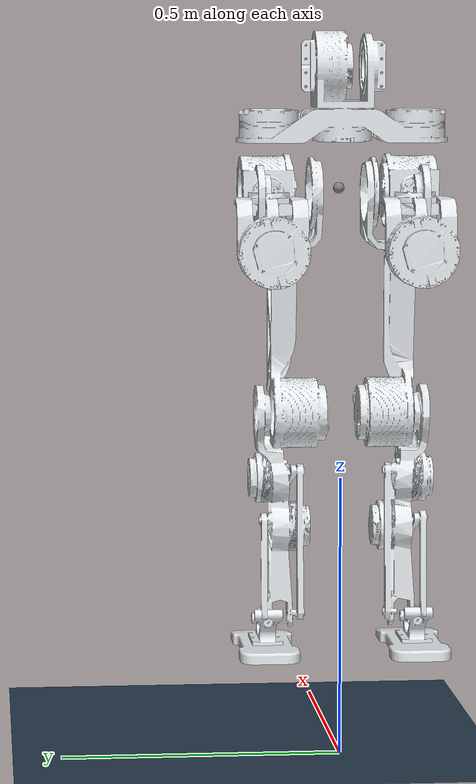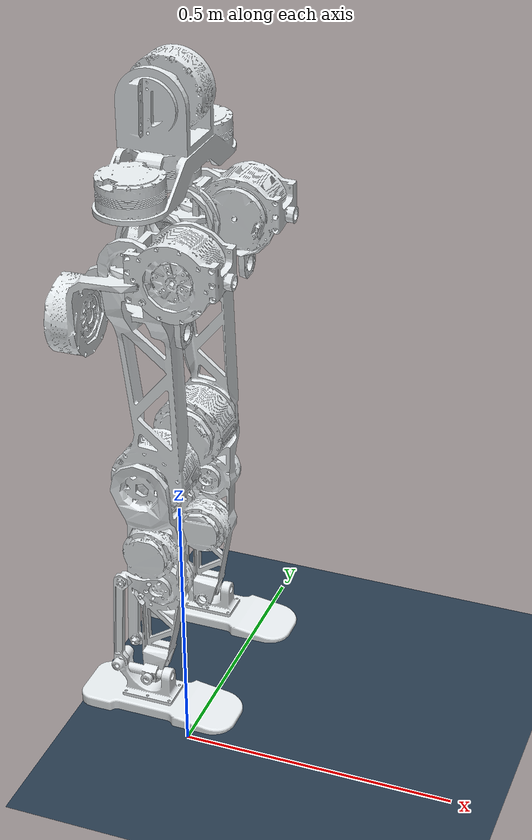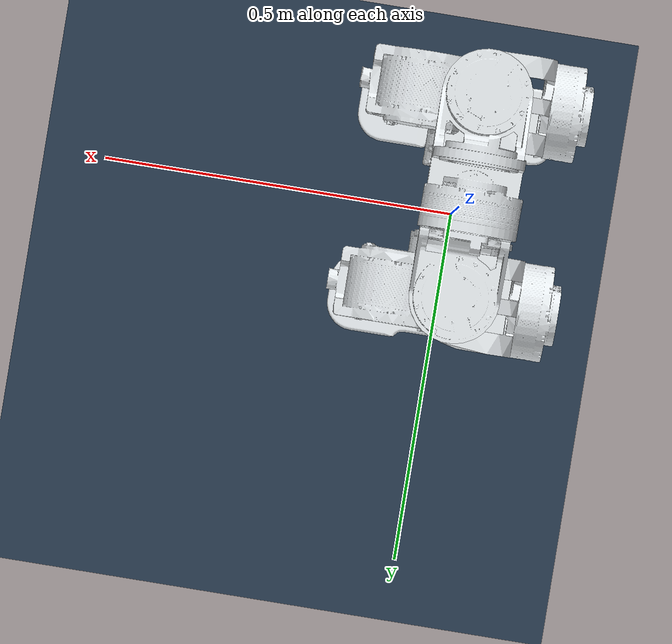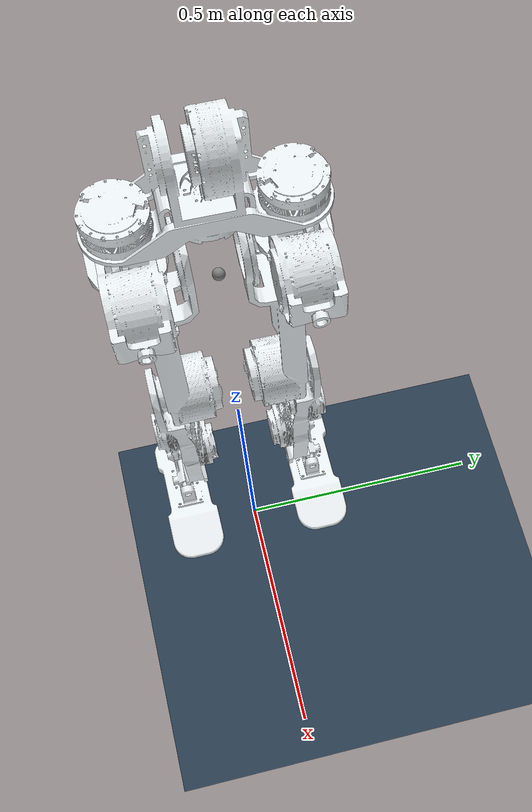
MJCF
<mujoco model="robot_zky">

  <compiler angle="radian" meshdir="../meshes/" autolimits="true"/>

  <option timestep="0.001"  tolerance="1e-10" solver="Newton" jacobian="dense" cone="pyramidal" gravity="0 0 -9.81">  <!--integrator="RK4"  iteration="50"-->
        <flag contact="enable" energy="enable"/>
  </option>

  <size njmax="500" nconmax="1000" />
  <statistic meansize="0.124491" extent="1.47932" center="0.0977106 1.30029e-06 0.632631"/>
  <default>
      <light castshadow="false" />
      <geom condim="4" contype="1" friction="0.9 0.2 0.2" solref="0.002 1" solimp="0.95 0.99 0.001" conaffinity="15"/>
      <default class='leg_joint_param'>
        <joint limited='true' damping="0.01" frictionloss="0.01" armature="0.01"/>
      </default>
      <default class="visual">
          <geom contype="0" conaffinity="0" group="1" type="mesh" euler="1.57 0 0" />
      </default>
      <default class="collision">
          <geom contype="1" conaffinity="1" friction="1.0 0.3 0.3"
                margin="0.001" group="0" euler="0 0 0"
                solref="0.05 2"
                solimp="0.9 0.95 0.001"/>

      </default>
      <joint damping="0.1" frictionloss="0.02" armature="0.01"/>
  </default>

  <asset>
    <mesh name="pelvis" file="pelvis.STL"/>
    <mesh name="left_hip_yaw_link" file="left_hip_yaw_link.STL"/>
    <mesh name="left_hip_roll_link" file="left_hip_roll_link.STL"/>
    <mesh name="left_hip_pitch_link" file="left_hip_pitch_link.STL"/>
    <mesh name="left_knee_link" file="left_knee_link.STL"/>
    <mesh name="left_ankle_pitch_link" file="left_ankle_pitch_link.STL"/>
    <mesh name="left_ankle_roll_link" file="left_ankle_roll_link.STL"/>
    <mesh name="right_hip_yaw_link" file="right_hip_yaw_link.STL"/>
    <mesh name="right_hip_roll_link" file="right_hip_roll_link.STL"/>
    <mesh name="right_hip_pitch_link" file="right_hip_pitch_link.STL"/>
    <mesh name="right_knee_link" file="right_knee_link.STL"/>
    <mesh name="right_ankle_pitch_link" file="right_ankle_pitch_link.STL"/>
    <mesh name="right_ankle_roll_link" file="right_ankle_roll_link.STL"/>
    <texture name="texplane" type="2d" builtin="checker" rgb1=".2 .3 .4" rgb2=".1 0.15 0.2" width="512" height="512" mark="cross" markrgb=".8 .8 .8" />
    <material name="matplane" reflectance="0.3" texture="texplane" texrepeat="1 1" texuniform="true" />
  </asset>

  <worldbody>
    <light directional="true" diffuse=".4 .4 .4" specular="0.1 0.1 0.1" pos="0 0 5.0" dir="0 0 -1" castshadow="false"/>
    <light directional="true" diffuse=".6 .6 .6" specular="0.2 0.2 0.2" pos="0 0 4" dir="0 0 -1"/>

    <geom name="ground" type="plane" size="0 0 1" pos="0 0 0" quat="1 0 0 0" material="matplane" condim="3" conaffinity='15' density="0"/>

    <body name="pelvis" pos="0 0 1.1">
      <inertial pos="5.2e-05 -0.001061 0.030044" quat="0.499428 0.499422 -0.500576 0.500573" mass="2.393" diaginertia="0.0385013 0.0367114 0.00365298"/>
      <joint name="floating_world_joint" type="free" limited="false" />

      <geom type="mesh" contype="0" conaffinity="0" group="1" density="0" rgba="0.89804 0.91765 0.92941 1" mesh="pelvis"/>
      <site name="imu_in_pelvis" size="0.01" pos="0.04525 0 -0.08339"/>

      <body name="left_hip_yaw_link" pos="-0.0015 0.13 -0.09">
        <inertial pos="-0.079616 -5e-06 0.017119" quat="0.00158885 0.414541 0.00062619 0.910029" mass="1.976" diaginertia="0.00856544 0.00820499 0.00398887"/>
        <joint name="left_hip_yaw_joint" pos="0 0 0" axis="0 0 1" range="-1.79 1.79" />
        <geom type="mesh" contype="0" conaffinity="0" group="1" density="0" rgba="0.89804 0.91765 0.92941 1" mesh="left_hip_yaw_link"/>
        <body name="left_hip_roll_link">
          <inertial pos="-0.002408 0.003222 0.000414" quat="0.483561 0.487194 0.508015 0.520319" mass="2.797" diaginertia="0.00811163 0.00695777 0.00542999"/>
          <joint name="left_hip_roll_joint" pos="0 0 0" axis="1 0 0" range="-3.1416 3.1416" />
          <geom type="mesh" contype="0" conaffinity="0" group="1" density="0" rgba="0.89804 0.91765 0.92941 1" mesh="left_hip_roll_link"/>
          <body name="left_hip_pitch_link">
            <inertial pos="0.003023 -0.000226 -0.290178" quat="0.679286 -0.0215234 0.033163 0.732808" mass="3.599" diaginertia="0.0868877 0.0855466 0.00731032"/>
            <joint name="left_hip_pitch_joint" pos="0 0 0" axis="0 1 0" range="-1.39 0.3" />
            <geom type="mesh" contype="0" conaffinity="0" group="1" density="0" rgba="0.898039 0.917647 0.929412 1" mesh="left_hip_pitch_link"/>
            <body name="left_knee_link" pos="0 0 -0.39">
              <inertial pos="0.00347 0.008614 -0.153999" quat="0.751015 -0.0415138 0.0736975 0.654845" mass="2.223" diaginertia="0.020134 0.0195199 0.00282332"/>
              <joint name="left_knee_joint" pos="0 0 0" axis="0 1 0" range="-0.74 2.05" />
              <geom type="mesh" contype="0" conaffinity="0" group="1" density="0" rgba="0.898039 0.917647 0.929412 1" mesh="left_knee_link"/>
              <body name="left_ankle_pitch_link" pos="0 0.004 -0.37">
                <inertial pos="2.2e-10 -3.683e-09 -5.8708e-08" quat="0.707107 0.707107 4.57061e-05 -4.26374e-05" mass="0.056" diaginertia="1.02716e-05 1.02716e-05 1.02716e-05"/>
                <joint name="left_ankle_pitch_joint" pos="0 0 0" axis="0 -1 0" range="-0.40 0.57" />
                <geom type="mesh" contype="0" conaffinity="0" group="1" density="0" rgba="0.898039 0.917647 0.929412 1" mesh="left_ankle_pitch_link"/>
                <body name="left_ankle_roll_link">
                  <inertial pos="0.00352385 6.1617e-08 -0.0365794" quat="0 0.733878 0 0.679281" mass="0.655" diaginertia="0.0034594 0.00327211 0.00070548"/>
                  <joint name="left_ankle_roll_joint" pos="0 0 0" axis="1 0 0" range="-0.17 0.17" />
                  <geom type="mesh" contype="0" conaffinity="0" group="1" density="0" rgba="0.898039 0.917647 0.929412 1" mesh="left_ankle_roll_link"/>
                  <geom name="left_foot_collision" type="mesh" mesh="left_ankle_roll_link"
                        rgba="0.3 0.8 0.3 0.5" euler="0 0 0" conaffinity="15"/>

                </body>
              </body>
            </body>
          </body>
        </body>
      </body>

      <body name="right_hip_yaw_link" pos="-0.0015 -0.13 -0.09">
        <inertial pos="-0.079616 5e-06 0.017119" quat="-0.00157935 0.414541 -0.000620685 0.910029" mass="1.976" diaginertia="0.00856544 0.00820499 0.00398887"/>
        <joint name="right_hip_yaw_joint" pos="0 0 0" axis="0 0 -1" range="-1.79 1.79" />
        <geom type="mesh" contype="0" conaffinity="0" group="1" density="0" rgba="0.898039 0.917647 0.929412 1" mesh="right_hip_yaw_link"/>
        <body name="right_hip_roll_link">
          <inertial pos="-0.002408 -0.003222 -0.000414" quat="0.520327 0.508007 0.487187 0.483567" mass="2.797" diaginertia="0.00811163 0.00695781 0.00542995"/>
          <joint name="right_hip_roll_joint" pos="0 0 0" axis="1 0 0" range="-3.1416 3.1416" />
          <geom type="mesh" contype="0" conaffinity="0" group="1" density="0" rgba="0.898039 0.917647 0.929412 1" mesh="right_hip_roll_link"/>
          <body name="right_hip_pitch_link">
            <inertial pos="-0.006279 0.000226 -0.290126" quat="0.73306 0.0440462 -0.00977507 0.678666" mass="3.599" diaginertia="0.0868877 0.0855466 0.00731027"/>
            <joint name="right_hip_pitch_joint" pos="0 0 0" axis="0 -1 0" range="-0.3 1.39" />
            <geom type="mesh" contype="0" conaffinity="0" group="1" density="0" rgba="0.898039 0.917647 0.929412 1" mesh="right_hip_pitch_link"/>
            <body name="right_knee_link" pos="0 0 -0.39">
              <inertial pos="0.003471 -0.006614 -0.153999" quat="0.65485 0.0736995 -0.0415111 0.751011" mass="2.223" diaginertia="0.0201341 0.0195201 0.0028233"/>
              <joint name="right_knee_joint" pos="0 0 0" axis="0 -1 0" range="-2.05 0.74" />
              <geom type="mesh" contype="0" conaffinity="0" group="1" density="0" rgba="0.898039 0.917647 0.929412 1" mesh="right_knee_link"/>
              <body name="right_ankle_pitch_link" pos="0 -0.004 -0.37">
                <inertial pos="1.85e-10 2.3532e-08 5.5948e-08" quat="0.707107 0.707107 4.17087e-05 -4.17087e-05" mass="0.058" diaginertia="1.03501e-05 1.03501e-05 1.03501e-05"/>
                <joint name="right_ankle_pitch_joint" pos="0 0 0" axis="0 1 0" range="-0.57 0.40" />
                <geom type="mesh" contype="0" conaffinity="0" group="1" density="0" rgba="0.898039 0.917647 0.929412 1" mesh="right_ankle_pitch_link"/>
                <body name="right_ankle_roll_link">
                  <inertial pos="0.00353523 9.0324e-08 -0.0366935" quat="0.00177057 0.733818 0.00193577 0.679341" mass="0.653" diaginertia="0.00345923 0.00326925 0.000702675"/>
                  <joint name="right_ankle_roll_joint" pos="0 0 0" axis="1 0 0" range="-0.17 0.17" />
                  <geom type="mesh" contype="0" conaffinity="0" group="1" density="0" rgba="0.898039 0.917647 0.929412 1" mesh="right_ankle_roll_link"/>
                  <geom name="right_foot_collision" type="mesh" mesh="right_ankle_roll_link"
                        rgba="0.3 0.8 0.3 0.5" euler="0 0 0" conaffinity="15"/>
                </body>
              </body>
            </body>
          </body>
        </body>
      </body>
    </body>
  </worldbody>

  <actuator>
    <motor name="left_hip_yaw_joint" joint="left_hip_yaw_joint" />
    <motor name="left_hip_roll_joint" joint="left_hip_roll_joint" />
    <motor name="left_hip_pitch_joint" joint="left_hip_pitch_joint" />
    <motor name="left_knee_joint" joint="left_knee_joint" />
    <motor name="left_ankle_pitch_joint" joint="left_ankle_pitch_joint" />
    <motor name="left_ankle_roll_joint" joint="left_ankle_roll_joint" />
    <motor name="right_hip_yaw_joint" joint="right_hip_yaw_joint" />
    <motor name="right_hip_roll_joint" joint="right_hip_roll_joint" />
    <motor name="right_hip_pitch_joint" joint="right_hip_pitch_joint" />
    <motor name="right_knee_joint" joint="right_knee_joint" />
    <motor name="right_ankle_pitch_joint" joint="right_ankle_pitch_joint" />
    <motor name="right_ankle_roll_joint" joint="right_ankle_roll_joint" />
  </actuator>

  <sensor>
    <framequat     name='orientation' objtype='site' noise='0.001' objname='imu_in_pelvis'/>
    <framepos     name='position' objtype='site' noise='0.001' objname='imu_in_pelvis'/>
    <gyro          name='angular-velocity'    site='imu_in_pelvis' noise='0.005' cutoff='34.9'/>
    <velocimeter   name='linear-velocity'     site='imu_in_pelvis' noise='0.001' cutoff='30'/>
    <accelerometer name='linear-acceleration' site='imu_in_pelvis' noise='0.005' cutoff='157'/>
    <magnetometer  name='magnetometer'        site='imu_in_pelvis'/>

  </sensor>

</mujoco>
